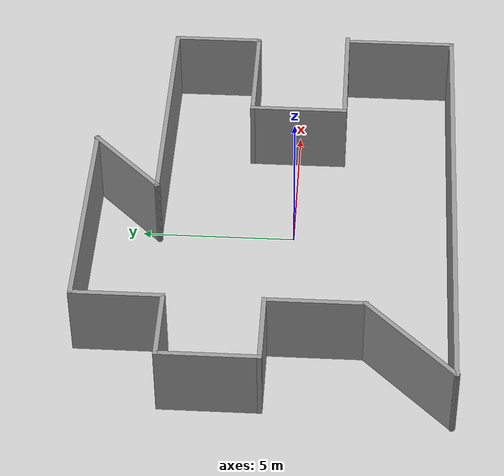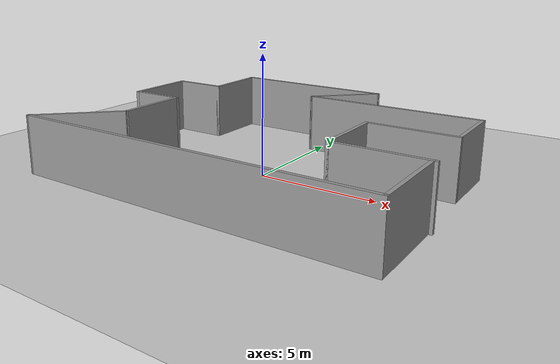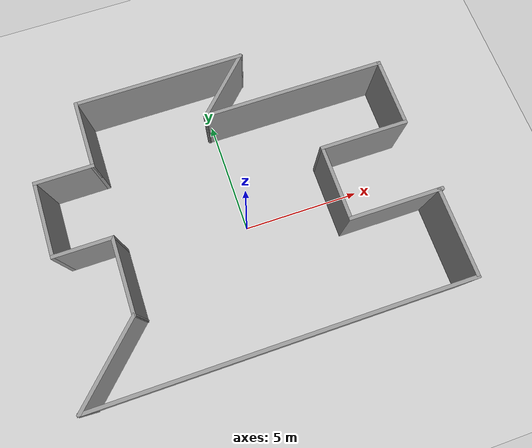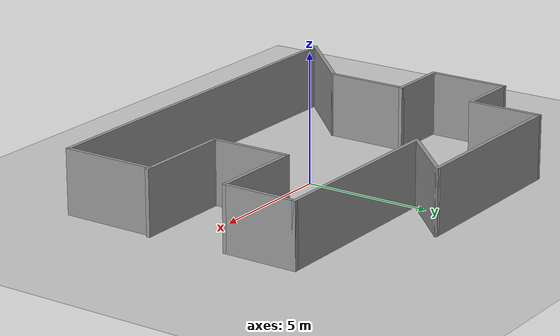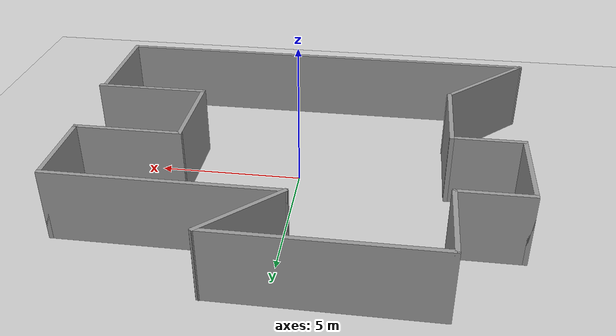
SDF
<sdf version="1.6">
 <world name="default">
  <light name="sun" type="directional">
   <pose>0 0 10 0 -0 0</pose>
   <diffuse>0.8 0.8 0.8 1</diffuse>
   <specular>0.2 0.2 0.2 1</specular>
   <attenuation>
    <range>1000</range>
    <constant>0.9</constant>
    <linear>0.01</linear>
    <quadratic>0.001</quadratic>
   </attenuation>
   <direction>-0.5 0.1 -0.9</direction>
   <spot><inner_angle>0</inner_angle><outer_angle>0</outer_angle><falloff>0</falloff></spot>
  </light>
  <model name="ground_plane">
   <static>1</static>
   <link name="link">
    <collision name="collision">
     <geometry><plane><normal>0 0 1</normal><size>100 100</size></plane></geometry>
     <surface><friction><ode><mu>100</mu><mu2>50</mu2></ode></friction></surface>
    </collision>
    <visual name="visual">
     <cast_shadows>0</cast_shadows>
     <geometry><plane><normal>0 0 1</normal><size>100 100</size></plane></geometry>
     <material>
      <script><uri>file://media/materials/scripts/gazebo.material</uri><name>Gazebo/Grey</name></script>
     </material>
    </visual>
   </link>
  </model>
  <gravity>0 0 -9.8</gravity>
  <magnetic_field>6e-06 2.3e-05 -4.2e-05</magnetic_field>
  <atmosphere type="adiabatic"/>
  <physics type="ode">
   <max_step_size>0.001</max_step_size>
   <real_time_factor>1</real_time_factor>
   <real_time_update_rate>1000</real_time_update_rate>
  </physics>
  <scene><ambient>0.4 0.4 0.4 1</ambient><background>0.7 0.7 0.7 1</background><shadows>1</shadows></scene>
  <audio><device>default</device></audio>
  <spherical_coordinates>
   <surface_model>EARTH_WGS84</surface_model>
   <latitude_deg>0</latitude_deg>
   <longitude_deg>0</longitude_deg>
   <elevation>0</elevation>
   <heading_deg>0</heading_deg>
  </spherical_coordinates>
  <model name="Simple_World">
   <pose>-0.157076 0.744311 0 0 -0 0</pose>
   <link name="Wall_14">
    <collision name="Wall_14_Collision">
     <geometry><box><size>15.5 0.15 2.5</size></box></geometry>
     <pose>0 0 1.25 0 -0 0</pose>
    </collision>
    <visual name="Wall_14_Visual">
     <pose>0 0 1.25 0 -0 0</pose>
     <geometry><box><size>15.5 0.15 2.5</size></box></geometry>
     <material>
      <script><uri>file://media/materials/scripts/gazebo.material</uri><name>Gazebo/Grey</name></script>
      <ambient>1 1 1 1</ambient>
     </material>
     <meta><layer>0</layer></meta>
    </visual>
    <pose>-0.049632 -5.88618 0 0 -0 3.14159</pose>
   </link>
   <link name="Wall_15">
    <collision name="Wall_15_Collision">
     <geometry><box><size>4 0.15 2.5</size></box></geometry>
     <pose>0 0 1.25 0 -0 0</pose>
    </collision>
    <visual name="Wall_15_Visual">
     <pose>0 0 1.25 0 -0 0</pose>
     <geometry><box><size>4 0.15 2.5</size></box></geometry>
     <material>
      <script><uri>file://media/materials/scripts/gazebo.material</uri><name>Gazebo/Grey</name></script>
      <ambient>1 1 1 1</ambient>
     </material>
     <meta><layer>0</layer></meta>
    </visual>
    <pose>-6.36345 -4.525 0 0 -0 0.785398</pose>
   </link>
   <link name="Wall_16">
    <collision name="Wall_16_Collision">
     <geometry><box><size>3.25 0.15 2.5</size></box></geometry>
     <pose>0 0 1.25 0 -0 0</pose>
    </collision>
    <visual name="Wall_16_Visual">
     <pose>0 0 1.25 0 -0 0</pose>
     <geometry><box><size>3.25 0.15 2.5</size></box></geometry>
     <material>
      <script><uri>file://media/materials/scripts/gazebo.material</uri><name>Gazebo/Grey</name></script>
      <ambient>1 1 1 1</ambient>
     </material>
     <meta><layer>0</layer></meta>
    </visual>
    <pose>-5.00227 -1.61382 0 0 -0 1.5708</pose>
   </link>
   <link name="Wall_17">
    <collision name="Wall_17_Collision">
     <geometry><box><size>2.5 0.15 2.5</size></box></geometry>
     <pose>0 0 1.25 0 -0 0</pose>
    </collision>
    <visual name="Wall_17_Visual">
     <pose>0 0 1.25 0 -0 0</pose>
     <geometry><box><size>2.5 0.15 2.5</size></box></geometry>
     <material>
      <script><uri>file://media/materials/scripts/gazebo.material</uri><name>Gazebo/Grey</name></script>
      <ambient>1 1 1 1</ambient>
     </material>
     <meta><layer>0</layer></meta>
    </visual>
    <pose>-6.17727 -0.063819 0 0 -0 3.14159</pose>
   </link>
   <link name="Wall_20">
    <collision name="Wall_20_Collision">
     <geometry><box><size>3.25 0.15 2.5</size></box></geometry>
     <pose>0 0 1.25 0 -0 0</pose>
    </collision>
    <visual name="Wall_20_Visual">
     <pose>0 0 1.25 0 -0 0</pose>
     <geometry><box><size>3.25 0.15 2.5</size></box></geometry>
     <material>
      <script><uri>file://media/materials/scripts/gazebo.material</uri><name>Gazebo/Grey</name></script>
      <ambient>1 1 1 1</ambient>
     </material>
     <meta><layer>0</layer></meta>
    </visual>
    <pose>-7.35227 1.48618 0 0 -0 1.5708</pose>
   </link>
   <link name="Wall_21">
    <collision name="Wall_21_Collision">
     <geometry><box><size>2.5 0.15 2.5</size></box></geometry>
     <pose>0 0 1.25 0 -0 0</pose>
    </collision>
    <visual name="Wall_21_Visual">
     <pose>0 0 1.25 0 -0 0</pose>
     <geometry><box><size>2.5 0.15 2.5</size></box></geometry>
     <material>
      <script><uri>file://media/materials/scripts/gazebo.material</uri><name>Gazebo/Grey</name></script>
      <ambient>1 1 1 1</ambient>
     </material>
     <meta><layer>0</layer></meta>
    </visual>
    <pose>-6.17727 3.03618 0 0 -0 0</pose>
   </link>
   <link name="Wall_23">
    <collision name="Wall_23_Collision">
     <geometry><box><size>3 0.15 2.5</size></box></geometry>
     <pose>0 0 1.25 0 -0 0</pose>
    </collision>
    <visual name="Wall_23_Visual">
     <pose>0 0 1.25 0 -0 0</pose>
     <geometry><box><size>3 0.15 2.5</size></box></geometry>
     <material>
      <script><uri>file://media/materials/scripts/gazebo.material</uri><name>Gazebo/Grey</name></script>
      <ambient>1 1 1 1</ambient>
     </material>
     <meta><layer>0</layer></meta>
    </visual>
    <pose>-5.00227 4.46118 0 0 -0 1.5708</pose>
   </link>
   <link name="Wall_24">
    <collision name="Wall_24_Collision">
     <geometry><box><size>7.25 0.15 2.5</size></box></geometry>
     <pose>0 0 1.25 0 -0 0</pose>
    </collision>
    <visual name="Wall_24_Visual">
     <pose>0 0 1.25 0 -0 0</pose>
     <geometry><box><size>7.25 0.15 2.5</size></box></geometry>
     <material>
      <script><uri>file://media/materials/scripts/gazebo.material</uri><name>Gazebo/Grey</name></script>
      <ambient>1 1 1 1</ambient>
     </material>
     <meta><layer>0</layer></meta>
    </visual>
    <pose>-1.45227 5.88618 0 0 -0 0</pose>
   </link>
   <link name="Wall_25">
    <collision name="Wall_25_Collision">
     <geometry><box><size>3.25 0.15 2.5</size></box></geometry>
     <pose>0 0 1.25 0 -0 0</pose>
    </collision>
    <visual name="Wall_25_Visual">
     <pose>0 0 1.25 0 -0 0</pose>
     <geometry><box><size>3.25 0.15 2.5</size></box></geometry>
     <material>
      <script><uri>file://media/materials/scripts/gazebo.material</uri><name>Gazebo/Grey</name></script>
      <ambient>1 1 1 1</ambient>
     </material>
     <meta><layer>0</layer></meta>
    </visual>
    <pose>1.00171 4.79017 0 0 -0 -2.35619</pose>
   </link>
   <link name="Wall_26">
    <collision name="Wall_26_Collision">
     <geometry><box><size>7.75 0.15 2.5</size></box></geometry>
     <pose>0 0 1.25 0 -0 0</pose>
    </collision>
    <visual name="Wall_26_Visual">
     <pose>0 0 1.25 0 -0 0</pose>
     <geometry><box><size>7.75 0.15 2.5</size></box></geometry>
     <material>
      <script><uri>file://media/materials/scripts/gazebo.material</uri><name>Gazebo/Grey</name></script>
      <ambient>1 1 1 1</ambient>
     </material>
     <meta><layer>0</layer></meta>
    </visual>
    <pose>3.7057 3.69415 0 0 -0 0</pose>
   </link>
   <link name="Wall_27">
    <collision name="Wall_27_Collision">
     <geometry><box><size>3 0.15 2.5</size></box></geometry>
     <pose>0 0 1.25 0 -0 0</pose>
    </collision>
    <visual name="Wall_27_Visual">
     <pose>0 0 1.25 0 -0 0</pose>
     <geometry><box><size>3 0.15 2.5</size></box></geometry>
     <material>
      <script><uri>file://media/materials/scripts/gazebo.material</uri><name>Gazebo/Grey</name></script>
      <ambient>1 1 1 1</ambient>
     </material>
     <meta><layer>0</layer></meta>
    </visual>
    <pose>7.5057 2.26915 0 0 -0 -1.5708</pose>
   </link>
   <link name="Wall_28">
    <collision name="Wall_28_Collision">
     <geometry><box><size>3.75 0.15 2.5</size></box></geometry>
     <pose>0 0 1.25 0 -0 0</pose>
    </collision>
    <visual name="Wall_28_Visual">
     <pose>0 0 1.25 0 -0 0</pose>
     <geometry><box><size>3.75 0.15 2.5</size></box></geometry>
     <material>
      <script><uri>file://media/materials/scripts/gazebo.material</uri><name>Gazebo/Grey</name></script>
      <ambient>1 1 1 1</ambient>
     </material>
     <meta><layer>0</layer></meta>
    </visual>
    <pose>5.7057 0.84415 0 0 -0 3.14159</pose>
   </link>
   <link name="Wall_30">
    <collision name="Wall_30_Collision">
     <geometry><box><size>3.25 0.15 2.5</size></box></geometry>
     <pose>0 0 1.25 0 -0 0</pose>
    </collision>
    <visual name="Wall_30_Visual">
     <pose>0 0 1.25 0 -0 0</pose>
     <geometry><box><size>3.25 0.15 2.5</size></box></geometry>
     <material>
      <script><uri>file://media/materials/scripts/gazebo.material</uri><name>Gazebo/Grey</name></script>
      <ambient>1 1 1 1</ambient>
     </material>
     <meta><layer>0</layer></meta>
    </visual>
    <pose>3.9057 -0.70585 0 0 -0 -1.5708</pose>
   </link>
   <link name="Wall_31">
    <collision name="Wall_31_Collision">
     <geometry><box><size>4 0.15 2.5</size></box></geometry>
     <pose>0 0 1.25 0 -0 0</pose>
    </collision>
    <visual name="Wall_31_Visual">
     <pose>0 0 1.25 0 -0 0</pose>
     <geometry><box><size>4 0.15 2.5</size></box></geometry>
     <material>
      <script><uri>file://media/materials/scripts/gazebo.material</uri><name>Gazebo/Grey</name></script>
      <ambient>1 1 1 1</ambient>
     </material>
     <meta><layer>0</layer></meta>
    </visual>
    <pose>5.8307 -2.25585 0 0 -0 0</pose>
   </link>
   <link name="Wall_33">
    <collision name="Wall_33_Collision">
     <geometry><box><size>3.75 0.15 2.5</size></box></geometry>
     <pose>0 0 1.25 0 -0 0</pose>
    </collision>
    <visual name="Wall_33_Visual">
     <pose>0 0 1.25 0 -0 0</pose>
     <geometry><box><size>3.75 0.15 2.5</size></box></geometry>
     <material>
      <script><uri>file://media/materials/scripts/gazebo.material</uri><name>Gazebo/Grey</name></script>
      <ambient>1 1 1 1</ambient>
     </material>
     <meta><layer>0</layer></meta>
    </visual>
    <pose>7.62537 -4.08618 0 0 -0 1.5708</pose>
   </link>
   <static>1</static>
  </model>
 </world>
</sdf>
